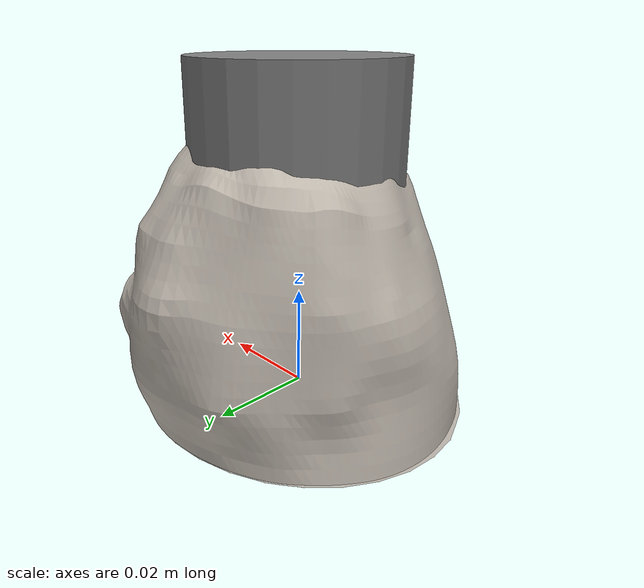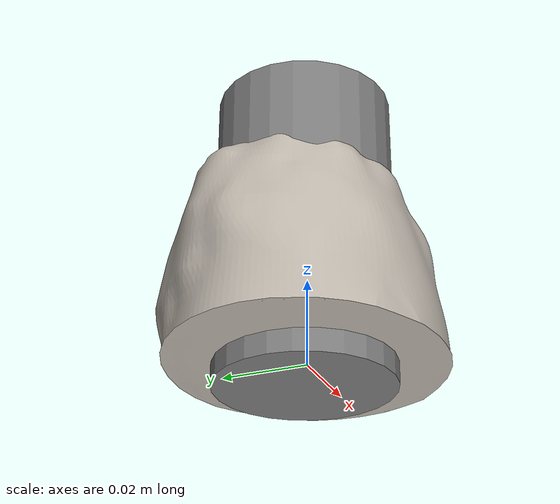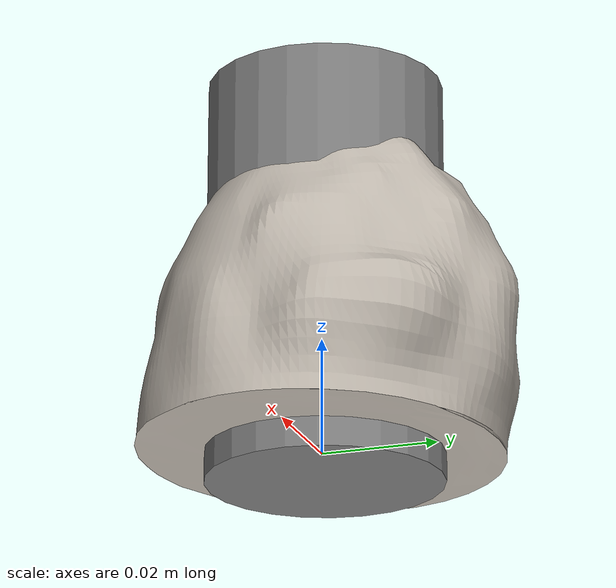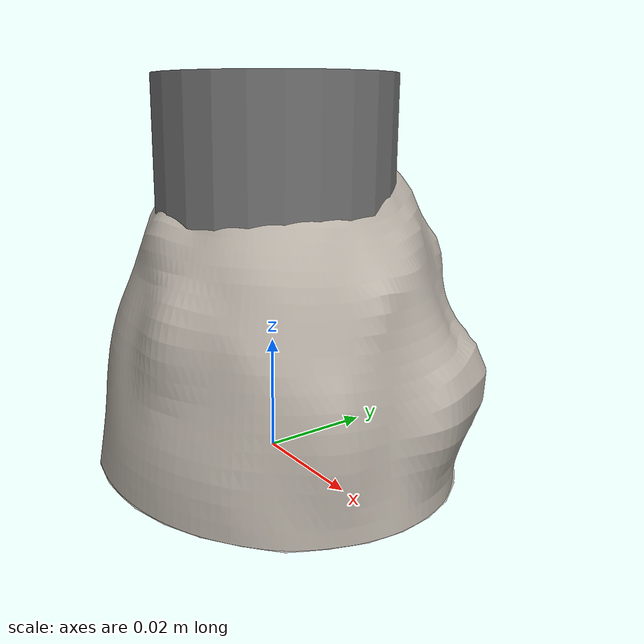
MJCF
<mujoco model="halfPotato">
<compiler meshdir="assets" texturedir="assets"/>

<asset>
  <texture name="halfPotato" file="halfPotato.png" type="2d"/>
  <material name="halfPotato" texture="halfPotato" specular="1" shininess="1"/>
  <mesh name="halfPotato" file="halfPotato.obj" scale="1.4 1.4 1.4"/>
</asset>

<default>
	<default class="collision">
		<geom condim="6" group="0" />
	</default>
	<default class="visual">
		<geom  condim="6" conaffinity="0" contype="0" mass="0" gap="10"/>
	</default>
</default>

<worldbody>
  <light mode="targetbodycom" target="base_link" directional="false" diffuse=".8 .8 .8" specular="0.3 0.3 0.3" pos="0 0 4.0" dir="0 0 -1" active="false"/>
  <body name="base_link">
    <freejoint name="root"/>
    <inertial pos="0 0.0006 0.02" mass="0.091" diaginertia="0.0000384 0.0000384 0.0000221"/>
    <geom class="collision" name ="collision" friction="1 0.05 0.005" type="cylinder" size="0.02 0.035" pos="0.0 0.0006 0.03"/>
    <geom class="visual" group="1" type="mesh" material="halfPotato" mesh="halfPotato"/>
    <geom name ="objectPos" class="visual" group="4" type="sphere" size="0.005"  pos="0.0 0.0 0.025" euler="0 0 0"/>
    <geom name ="grabbingPos1" class="visual" group="4" type="cylinder" size="0.002 0.005"  pos="0.0 0.0 0.005" euler="0 0 0"/>
  </body>
</worldbody>
</mujoco>
